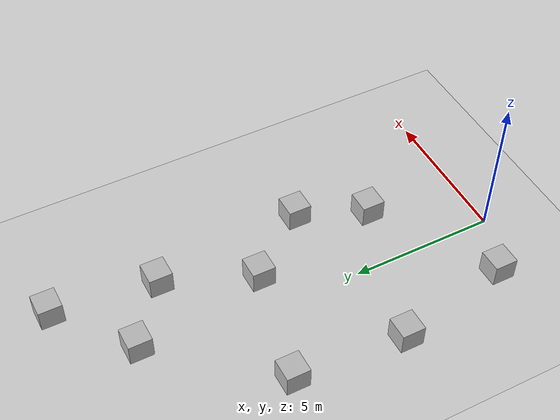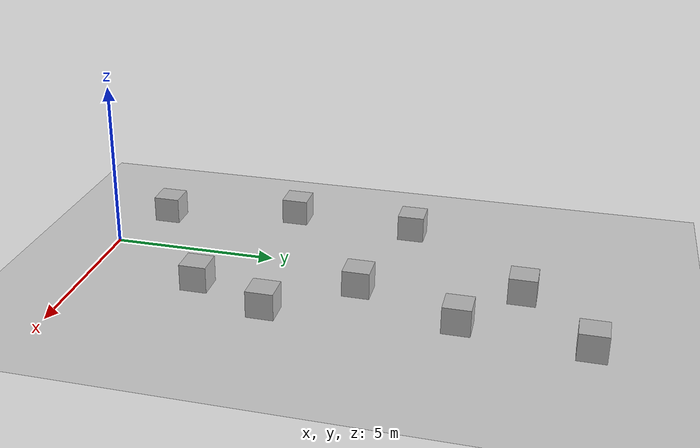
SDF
<sdf version="1.6">
 <world name="default">
  <light name="sun" type="directional">
   <pose>0 0 10 0 -0 0</pose>
   <diffuse>0.8 0.8 0.8 1</diffuse>
   <specular>0.2 0.2 0.2 1</specular>
   <attenuation>
    <range>1000</range>
    <constant>0.9</constant>
    <linear>0.01</linear>
    <quadratic>0.001</quadratic>
   </attenuation>
   <direction>-0.5 0.1 -0.9</direction>
  </light>
  <model name="ground_plane">
   <static>1</static>
   <link name="link">
    <collision name="collision">
     <geometry><plane><normal>0 0 1</normal><size>100 100</size></plane></geometry>
     <surface><friction><ode><mu>100</mu><mu2>50</mu2></ode></friction></surface>
    </collision>
    <visual name="visual">
     <cast_shadows>0</cast_shadows>
     <geometry><plane><normal>0 0 1</normal><size>100 100</size></plane></geometry>
     <material>
      <script><uri>file://media/materials/scripts/gazebo.material</uri><name>Gazebo/Grey</name></script>
     </material>
    </visual>
   </link>
  </model>
  <gravity>0 0 -9.8</gravity>
  <magnetic_field>6e-06 2.3e-05 -4.2e-05</magnetic_field>
  <atmosphere type="adiabatic"/>
  <physics name="default_physics" default="0" type="ode">
   <max_step_size>0.001</max_step_size>
   <real_time_factor>1</real_time_factor>
   <real_time_update_rate>1000</real_time_update_rate>
  </physics>
  <scene><ambient>0.4 0.4 0.4 1</ambient><background>0.7 0.7 0.7 1</background><shadows>1</shadows></scene>
  <audio><device>default</device></audio>
  <spherical_coordinates>
   <surface_model>EARTH_WGS84</surface_model>
   <latitude_deg>0</latitude_deg>
   <longitude_deg>0</longitude_deg>
   <elevation>0</elevation>
   <heading_deg>0</heading_deg>
  </spherical_coordinates>
  <model name="number1">
   <pose>-2.02138 0.938933 0.4 0 -0 0</pose>
   <static>1</static>
   <link name="link">
    <visual name="visual">
     <geometry><mesh><uri>model://number1/meshes/number.dae</uri></mesh></geometry>
     <material>
      <script>
       <uri>model://number1/materials/scripts</uri>
       <uri>model://number1/materials/textures</uri>
       <name>Number/One</name>
      </script>
     </material>
    </visual>
   </link>
  </model>
  <model name="number2">
   <pose>2.14662 3.38758 0.4 0 -0 0</pose>
   <static>1</static>
   <link name="link">
    <visual name="visual">
     <geometry><mesh><uri>model://number1/meshes/number.dae</uri></mesh></geometry>
     <material>
      <script>
       <uri>model://number2/materials/scripts</uri>
       <uri>model://number2/materials/textures</uri>
       <name>Number/Two</name>
      </script>
     </material>
    </visual>
   </link>
  </model>
  <model name="number3">
   <pose>-2.9091 4.99288 0.4 0 -0 0</pose>
   <static>1</static>
   <link name="link">
    <visual name="visual">
     <geometry><mesh><uri>model://number1/meshes/number.dae</uri></mesh></geometry>
     <material>
      <script>
       <uri>model://number3/materials/scripts</uri>
       <uri>model://number3/materials/textures</uri>
       <name>Number/Three</name>
      </script>
     </material>
    </visual>
   </link>
  </model>
  <model name="number4">
   <pose>3.12094 5.67669 0.4 0 -0 0</pose>
   <static>1</static>
   <link name="link">
    <visual name="visual">
     <geometry><mesh><uri>model://number1/meshes/number.dae</uri></mesh></geometry>
     <material>
      <script>
       <uri>model://number4/materials/scripts</uri>
       <uri>model://number4/materials/textures</uri>
       <name>Number/Four</name>
      </script>
     </material>
    </visual>
   </link>
  </model>
  <model name="number5">
   <pose>-2.63144 8.82217 0.4 0 -0 0</pose>
   <static>1</static>
   <link name="link">
    <visual name="visual">
     <geometry><mesh><uri>model://number1/meshes/number.dae</uri></mesh></geometry>
     <material>
      <script>
       <uri>model://number5/materials/scripts</uri>
       <uri>model://number5/materials/textures</uri>
       <name>Number/Five</name>
      </script>
     </material>
    </visual>
   </link>
  </model>
  <model name="number6">
   <pose>1.31436 7.95265 0.4 0 -0 0</pose>
   <static>1</static>
   <link name="link">
    <visual name="visual">
     <geometry><mesh><uri>model://number1/meshes/number.dae</uri></mesh></geometry>
     <material>
      <script>
       <uri>model://number6/materials/scripts</uri>
       <uri>model://number6/materials/textures</uri>
       <name>Number/Six</name>
      </script>
     </material>
    </visual>
   </link>
  </model>
  <model name="number7">
   <pose>2.60732 10.9736 0.4 0 -0 0</pose>
   <static>1</static>
   <link name="link">
    <visual name="visual">
     <geometry><mesh><uri>model://number1/meshes/number.dae</uri></mesh></geometry>
     <material>
      <script>
       <uri>model://number7/materials/scripts</uri>
       <uri>model://number7/materials/textures</uri>
       <name>Number/Seven</name>
      </script>
     </material>
    </visual>
   </link>
  </model>
  <model name="number8">
   <pose>0.562583 12.5375 0.4 0 -0 0</pose>
   <static>1</static>
   <link name="link">
    <visual name="visual">
     <geometry><mesh><uri>model://number1/meshes/number.dae</uri></mesh></geometry>
     <material>
      <script>
       <uri>model://number8/materials/scripts</uri>
       <uri>model://number8/materials/textures</uri>
       <name>Number/Eight</name>
      </script>
     </material>
    </visual>
   </link>
  </model>
  <model name="number9">
   <pose>3.03217 14.5145 0.4 0 -0 0</pose>
   <static>1</static>
   <link name="link">
    <visual name="visual">
     <geometry><mesh><uri>model://number1/meshes/number.dae</uri></mesh></geometry>
     <material>
      <script>
       <uri>model://number9/materials/scripts</uri>
       <uri>model://number9/materials/textures</uri>
       <name>Number/Nine</name>
      </script>
     </material>
    </visual>
   </link>
  </model>
 </world>
</sdf>
